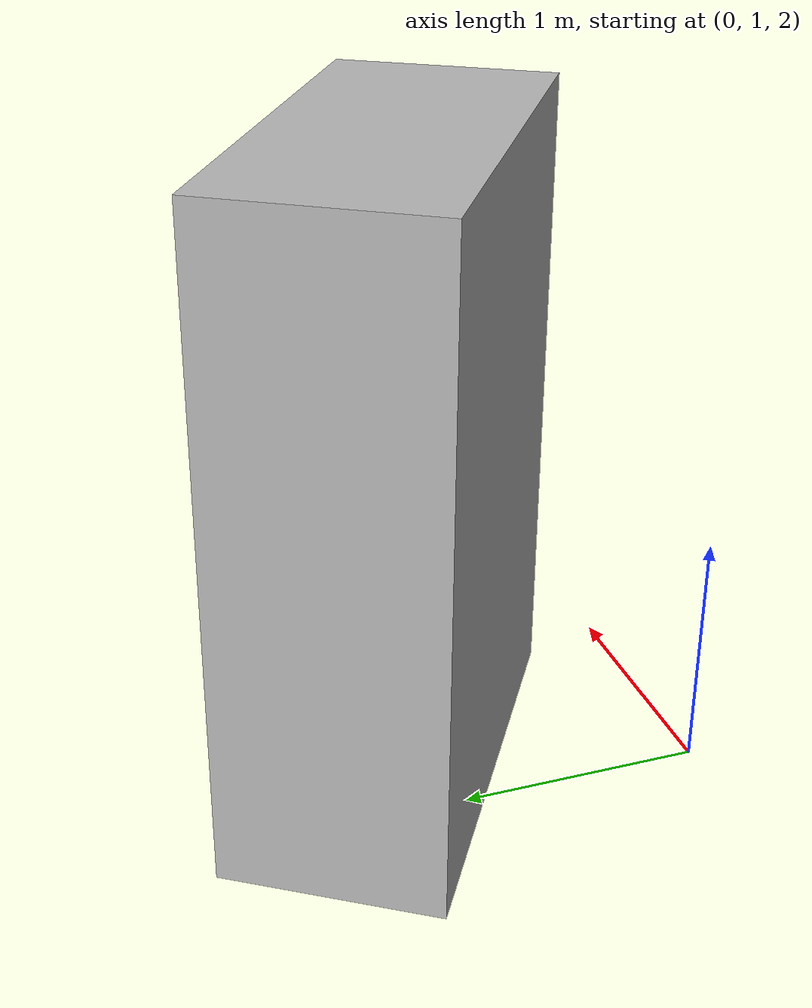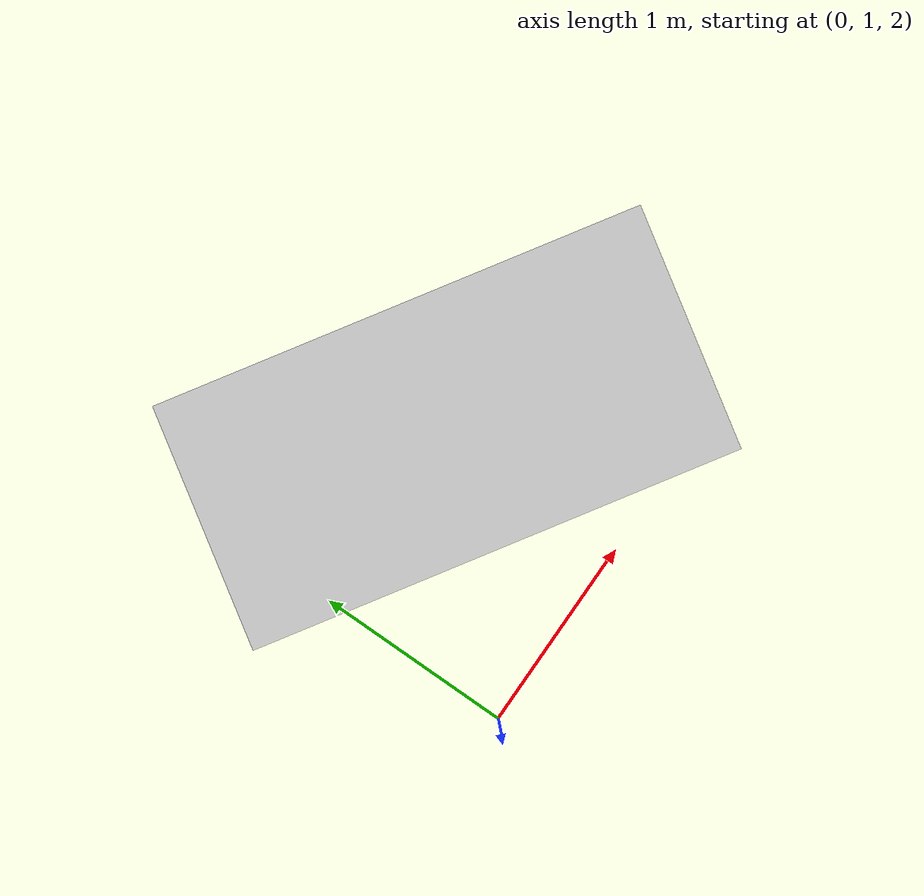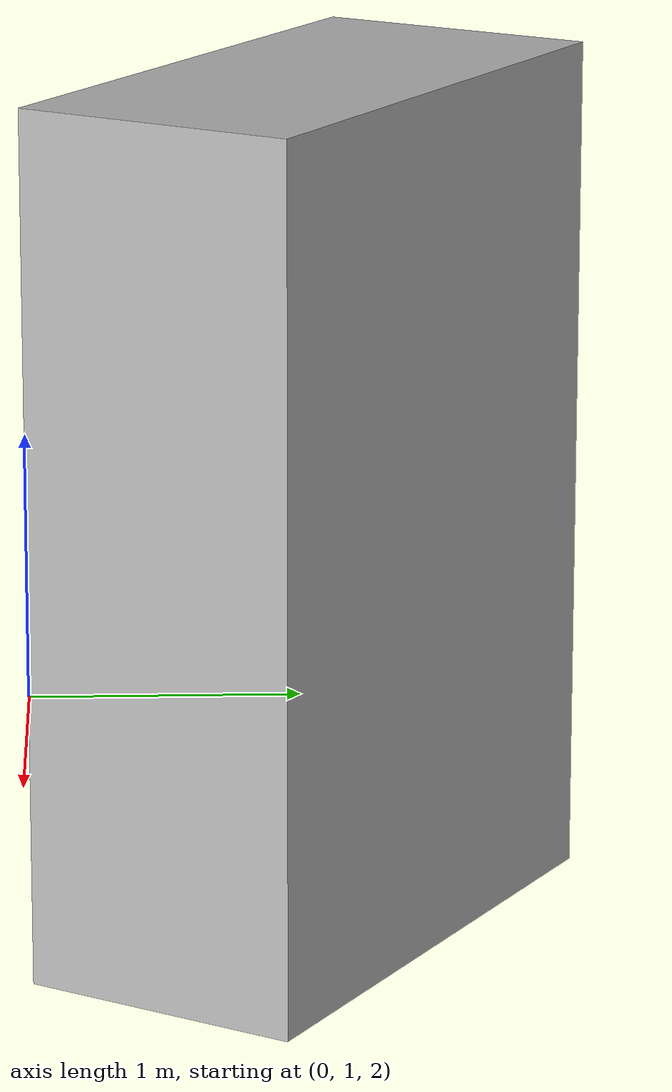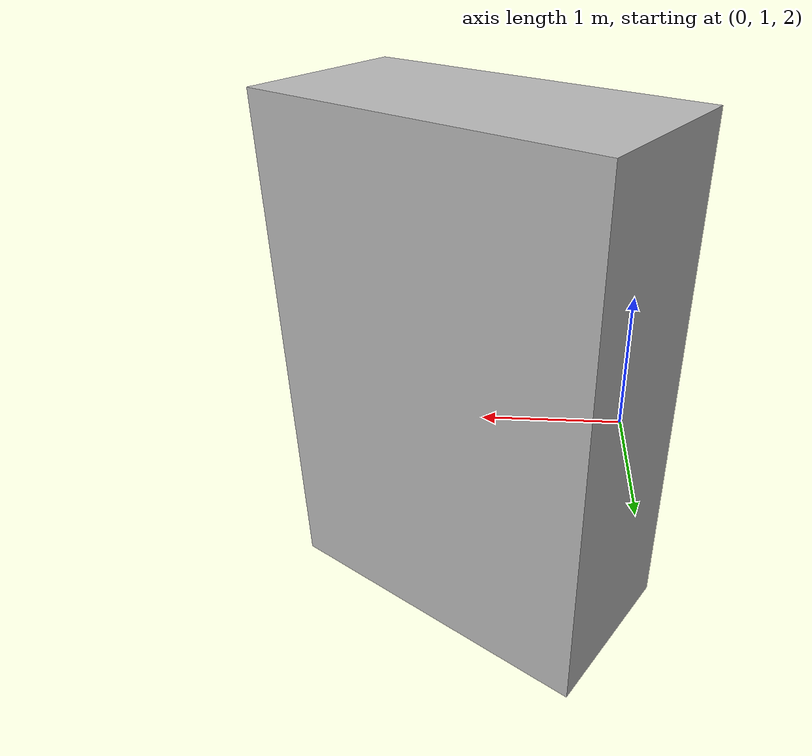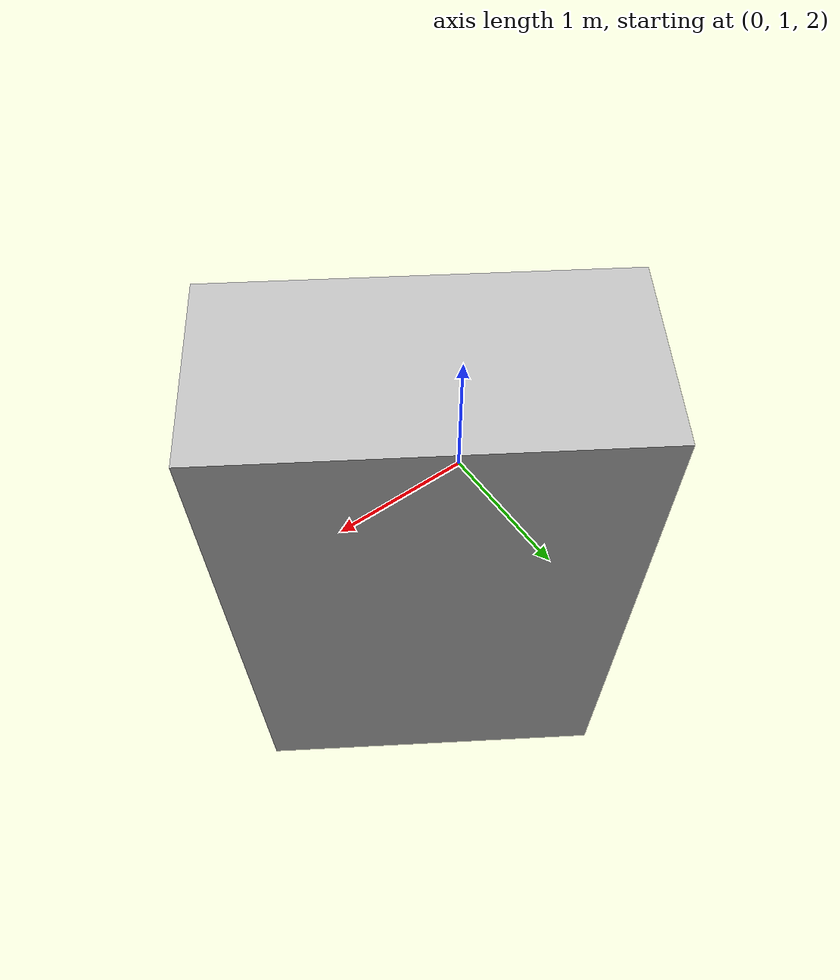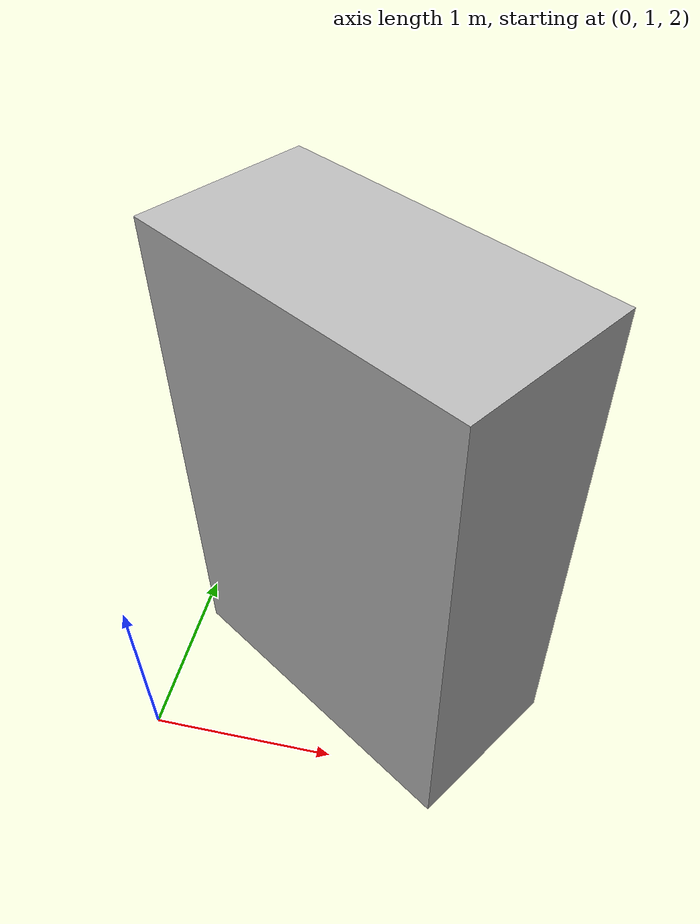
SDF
<?xml version="1.0" ?>
<sdf version="1.6">
  <world name="distributed_primary">
    <plugin
      filename="libignition-gazebo-network-system.so"
      name="ignition::gazebo::systems::v0::NetworkPrimary">
      <num_clients>2</num_clients>
    </plugin>

    <model name="box">
      <pose>1 2 3 0 0 1</pose>
      <link name="link">
        <collision name="col">
          <geometry>
            <box>
              <size>3 4 5</size>
            </box>
          </geometry>
        </collision>

        <visual name="vis">
          <geometry>
            <box>
              <size>1 2 3</size>
            </box>
          </geometry>
        </visual>
      </link>
    </model>
  </world>
</sdf>
